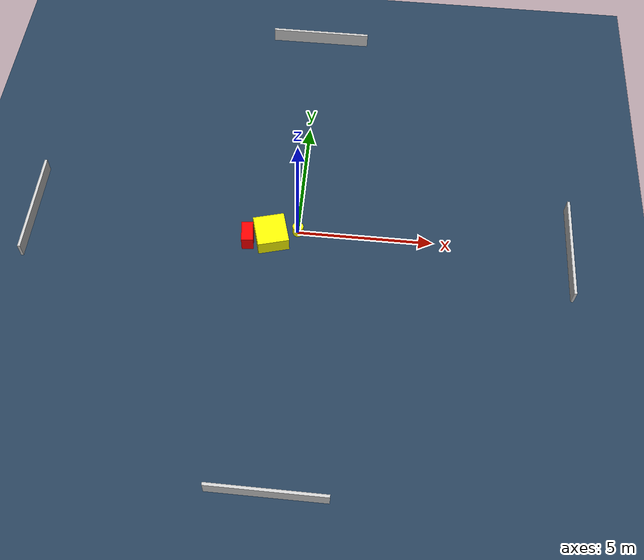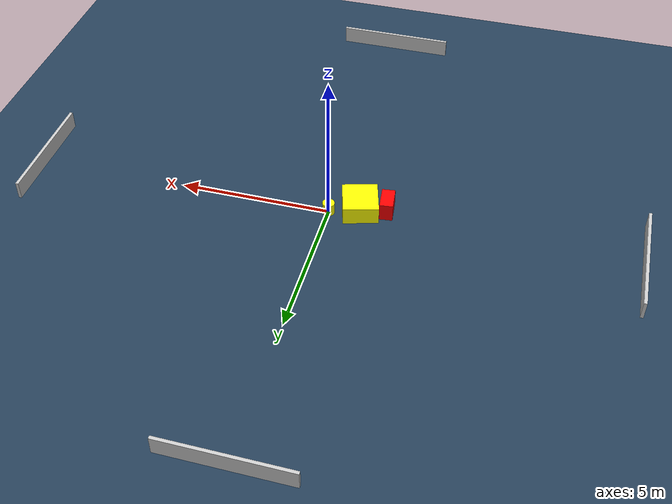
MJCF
<?xml version="1.0" ?>
<mujoco model="generated_environment">
  <option timestep="0.01" integrator="RK4" cone="elliptic"/>
  <default>
    <geom density="1"/>
  </default>
  <asset>
    <texture builtin="gradient" height="3072" name="skybox" rgb1="0.3 0.5 0.7" rgb2="0 0 0" type="skybox" width="512"/>
    <texture builtin="checker" height="300" name="groundplane" rgb1="0.2 0.3 0.4" rgb2="0.1 0.2 0.3" type="2d" width="300"/>
    <material name="groundplane" reflectance="0.2" texrepeat="5 5" texture="groundplane"/>
  </asset>
  <worldbody>
    <light dir="0 0 -1" directional="true" pos="0 0 1.5"/>
    <geom condim="3" friction="0.5 0.005 0.001" material="groundplane" name="floor" pos="0 0 0" size="0 0 0.05" type="plane"/>
    <body name="walls">
      <geom name="wall_1" condim="4" pos="-10.0 0.0 0.3" rgba="0.800000011920929 0.800000011920929 0.800000011920929 1.0" size="0.05 2.0 0.3" type="box"/>
      <geom name="wall_2" condim="4" pos="10.0 0.0 0.3" rgba="0.800000011920929 0.800000011920929 0.800000011920929 1.0" size="0.05 2.0 0.3" type="box"/>
      <geom name="wall_3" condim="4" pos="0.0 -10.0 0.3" rgba="0.800000011920929 0.800000011920929 0.800000011920929 1.0" size="2.0 0.05 0.3" type="box"/>
      <geom name="wall_4" condim="4" pos="0.0 10.0 0.3" rgba="0.800000011920929 0.800000011920929 0.800000011920929 1.0" size="2.0 0.05 0.3" type="box"/>
    </body>
    <body name="robot">
      <joint name="joint_x" type="slide" pos="0 0 0" axis="1 0 0"/>
      <joint name="joint_y" type="slide" pos="0 0 0" axis="0 1 0"/>
      <geom name="robot" type="cylinder" pos="0.0 0.0 0.2" size="0.2 0.2 0.0" mass="5.0" friction="1.0 0.005 0.0001" condim="4" rgba="1.0 1.0 0.0 1.0"/>
    </body>
    <body name="obstacle_1_movable">
      <geom name="obstacle_1_movable" condim="4" pos="-0.9669350834953685 -0.33626214684499117 0.3" euler="0 0 285.6613068824357" friction="0.0 0.005 0.001" rgba="1.0 1.0 0.0 1.0" size="0.6104983148719993 0.5777016157484473 0.3" type="box" mass="0.1"/>
      <joint type="free"/>
    </body>
    <body name="obstacle_2_static">
      <geom name="obstacle_2_static" condim="4" pos="-1.8224470869899585 -0.513091236328881 0.3" euler="0 0 186.5412778364679" friction="0.0 0.005 0.001" rgba="1.0 0.0 0.0 1.0" size="0.21774365309851906 0.3981438385675125 0.3" type="box"/>
    </body>
  </worldbody>
  <actuator>
    <motor name="actuator_x" joint="joint_x" gear="1" ctrlrange="-1 1"/>
    <motor name="actuator_y" joint="joint_y" gear="1" ctrlrange="-1 1"/>
  </actuator>
</mujoco>
